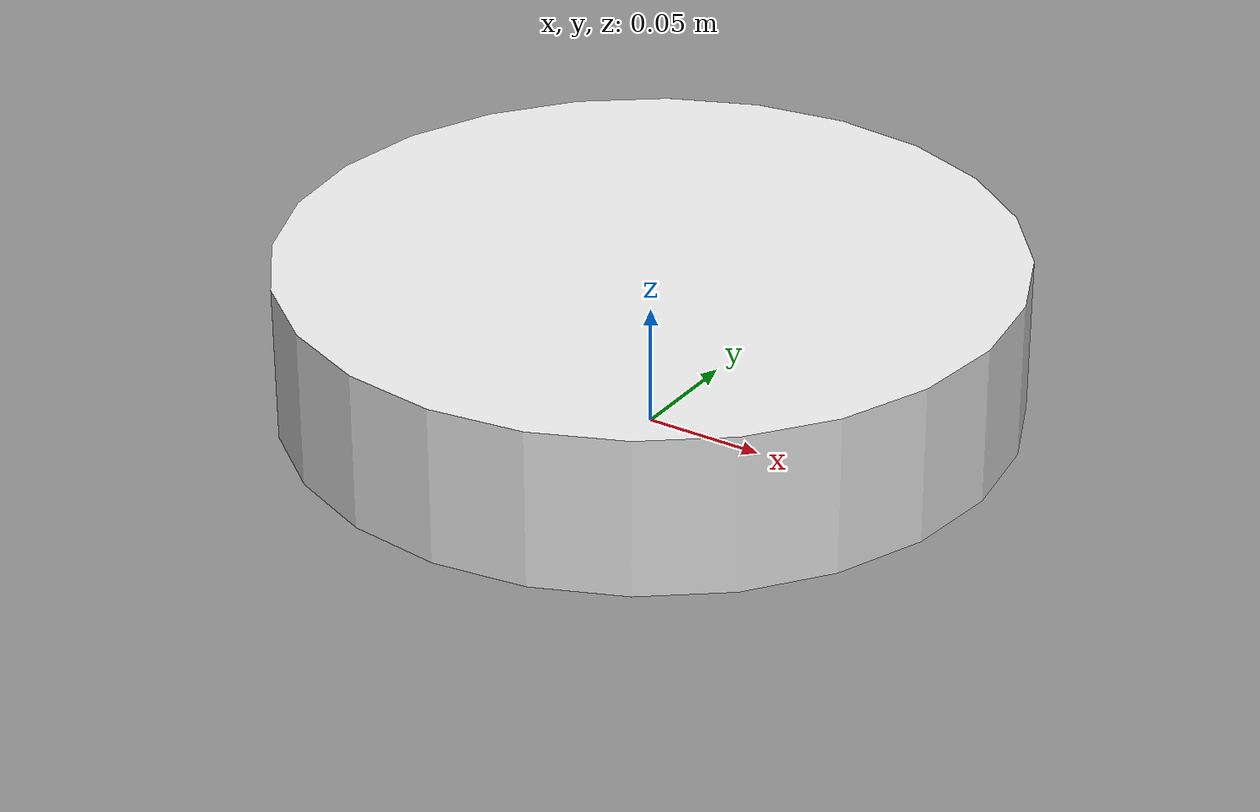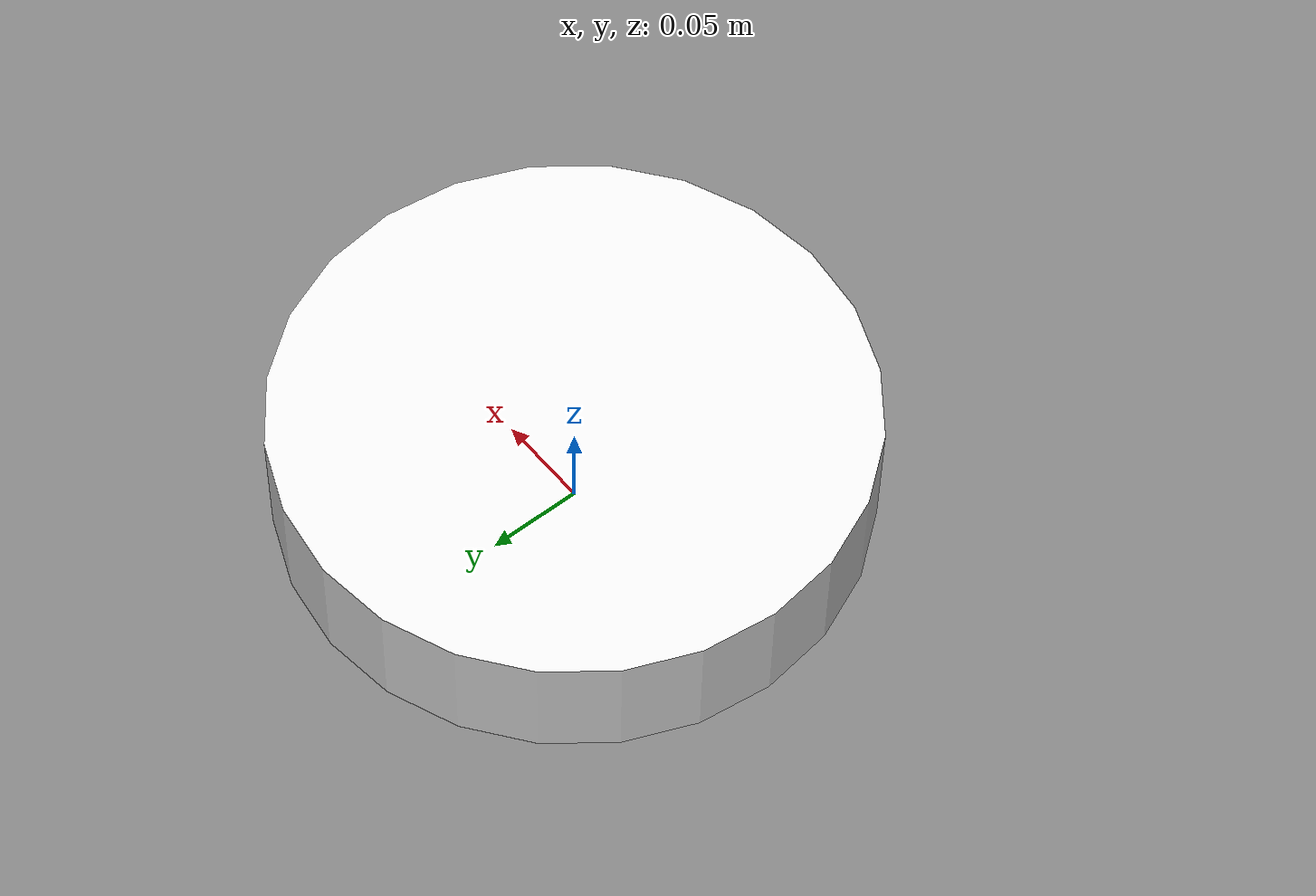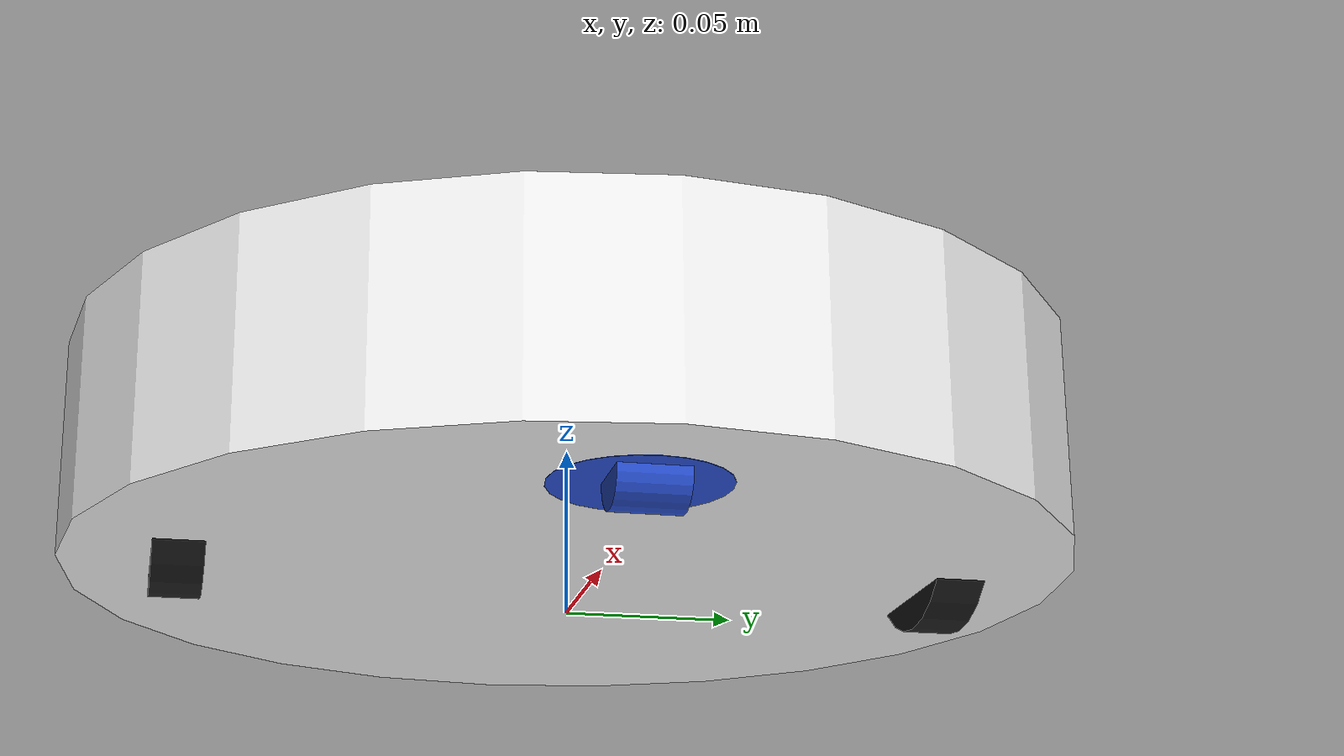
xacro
<?xml version="1.0"?>
<robot xmlns:xacro="http://www.ros.org/wiki/xacro">

    <!-- BASE LINK -->
    <!-- defined on the ground in the center of the robot-->
    <link name="base_link"></link>

    <!-- BASE_FOOTPRINT LINK -->
    <joint name="base_footprint_joint" type="fixed">
        <parent link="base_link"/>
        <child link="base_footprint"/>
        <origin xyz="0 0 0" rpy="0 0 0"/>
    </joint>

    <link name="base_footprint">
    </link>

    <!-- CHASSIS LINK -->
    <xacro:property name="chassis_radius" value="0.150"/>
    <xacro:property name="chassis_thickness" value="0.065"/>
    <xacro:property name="chassis_mass" value="2.000"/>
    <xacro:property name="chassis_color" value="white"/>

    <xacro:property name="chassis_offset_z" value="0.0425"/>

    <joint name="chassis_joint" type="fixed">
        <parent link="base_link"/>
        <child link="chassis"/>
        <origin xyz="0 0 ${chassis_offset_z}"/>
    </joint>

    <link name="chassis">
        <visual>
            <origin xyz="0 0 0"/>
            <geometry>
                <cylinder radius="${chassis_radius}" length="${chassis_thickness}"/>
            </geometry>
            <material name="${chassis_color}"/>
        </visual>
        <collision>
            <origin xyz="0 0 0"/>
            <geometry>
                <cylinder radius="${chassis_radius}" length="${chassis_thickness}"/>
            </geometry>
        </collision>
        <xacro:inertial_cylinder mass="${chassis_mass}" radius="${chassis_radius}" length="${chassis_thickness}">
            <origin xyz="0.01 0 0" rpy="0 0 0"/>
        </xacro:inertial_cylinder>
    </link>

    <!-- LEFT WHEEL LINK -->
    <xacro:property name="wheel_radius" value="0.0325"/>
    <xacro:property name="wheel_thickness" value="0.015"/>
    <xacro:property name="wheel_mass" value="0.030"/>
    <xacro:property name="wheel_color" value="black"/>

    <xacro:property name="wheel_offset_x" value="0"/>
    <xacro:property name="wheel_separation" value="0.231"/>

    <joint name="wheel_left_joint" type="continuous">
        <parent link="base_link"/>
        <child link="wheel_left"/>
        <origin xyz="${wheel_offset_x} ${wheel_separation/2} ${wheel_radius}" rpy="-${pi/2} 0 0" />
        <axis xyz="0 0 1"/>
    </joint>

    <link name="wheel_left">
        <visual>
            <geometry>
                <cylinder radius="${wheel_radius}" length="${wheel_thickness}"/>
            </geometry>
            <material name="${wheel_color}"/>
        </visual>
        <collision>
            <geometry>
                <cylinder radius="${wheel_radius}" length="${wheel_thickness}"/>
            </geometry>
        </collision>
        <xacro:inertial_cylinder mass="${wheel_mass}" radius="${wheel_radius}" length="${wheel_thickness}">
            <origin xyz="0 0 0" rpy="0 0 0"/>
        </xacro:inertial_cylinder>
    </link>

    <!-- RIGHT WHEEL LINK -->
    <joint name="wheel_right_joint" type="continuous">
        <parent link="base_link"/>
        <child link="wheel_right"/>
        <origin xyz="${wheel_offset_x} ${-wheel_separation/2} ${wheel_radius}" rpy="${pi/2} 0 0" />
        <axis xyz="0 0 -1"/>
    </joint>

    <link name="wheel_right">
        <visual>
            <geometry>
                <cylinder radius="${wheel_radius}" length="${wheel_thickness}"/>
            </geometry>
            <material name="${wheel_color}"/>
        </visual>
        <collision>
            <geometry>
                <cylinder radius="${wheel_radius}" length="${wheel_thickness}"/>
            </geometry>
        </collision>
        <xacro:inertial_cylinder mass="${wheel_mass}" radius="${wheel_radius}" length="${wheel_thickness}">
            <origin xyz="0 0 0" rpy="0 0 0"/>
        </xacro:inertial_cylinder>
    </link>

    <!-- CASTER WHEEL PLATE LINK -->
    <xacro:property name="caster_wheel_plate_radius" value="0.025"/>
    <xacro:property name="caster_wheel_plate_thickness" value="0.0001"/>
    <xacro:property name="caster_wheel_plate_mass" value="0.005"/>
    <xacro:property name="caster_wheel_plate_color" value="blue"/>

    <xacro:property name="caster_wheel_plate_offset_x" value="0.1"/>

    <joint name="caster_wheel_plate_joint" type="fixed">0
        <parent link="chassis"/>
        <child link="caster_wheel_plate"/>
        <origin xyz="${caster_wheel_plate_offset_x} 0 ${-chassis_thickness/2}"/>
        <axis xyz="0 0 -1"/>
    </joint>

    <link name="caster_wheel_plate">
        <visual>
            <origin xyz="0 0 ${-caster_wheel_plate_thickness/2}"/>
            <geometry>
                <cylinder radius="${caster_wheel_plate_radius}" length="${caster_wheel_plate_thickness}"/>
            </geometry>
            <material name="${caster_wheel_plate_color}"/>
        </visual>
        <collision>
            <geometry>
                <cylinder radius="${caster_wheel_plate_radius}" length="${caster_wheel_plate_thickness}"/>
            </geometry>
        </collision>
        <xacro:inertial_cylinder mass="${caster_wheel_plate_mass}" radius="${caster_wheel_plate_radius}" length="${caster_wheel_plate_thickness}">
            <origin xyz="0 0 0" rpy="0 0 0"/>
        </xacro:inertial_cylinder>
    </link>

    <!-- CASTER WHEEL LINK -->
    <xacro:property name="caster_wheel_radius" value="0.010"/>
    <xacro:property name="caster_wheel_thickness" value="0.020"/>
    <xacro:property name="caster_wheel_mass" value="0.015"/>
    <xacro:property name="caster_wheel_color" value="blue"/>

    <xacro:property name="caster_wheel_offset_x" value="0.008"/>

    <joint name="caster_wheel_joint" type="fixed">
        <parent link="caster_wheel_plate"/>
        <child link="caster_wheel"/>
        <origin xyz="${caster_wheel_offset_x} 0 0" rpy="${pi/2}  0 0" />
        <axis xyz="0 0 -1"/>
    </joint>

    <link name="caster_wheel">
        <visual>
            <geometry>
                <cylinder radius="${caster_wheel_radius}" length="${caster_wheel_thickness}"/>
            </geometry>
            <material name="${caster_wheel_color}"/>
        </visual>
        <collision>
            <geometry>
                <cylinder radius="${caster_wheel_radius}" length="${caster_wheel_thickness}"/>
            </geometry>
        </collision>
        <xacro:inertial_cylinder mass="${caster_wheel_mass}" radius="${caster_wheel_radius}" length="${caster_wheel_thickness}">
            <origin xyz="0 0 0" rpy="0 0 0"/>
        </xacro:inertial_cylinder>
    </link>

</robot>
